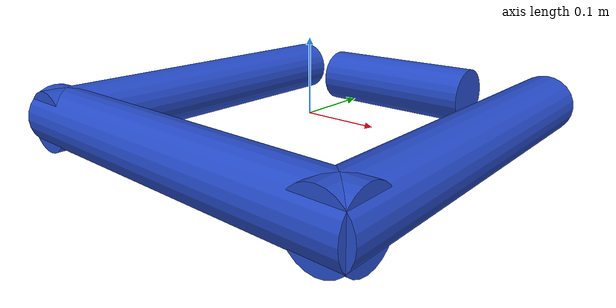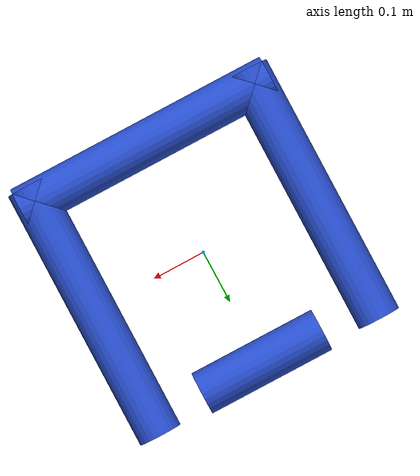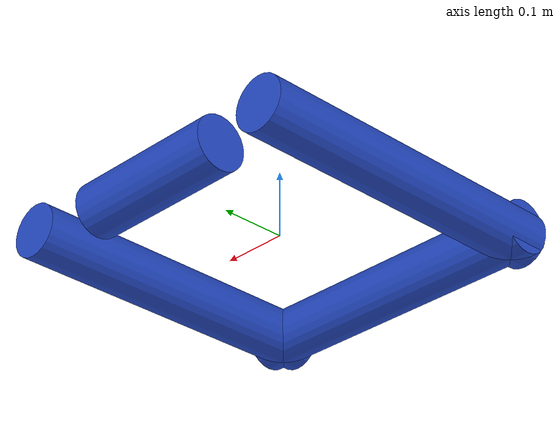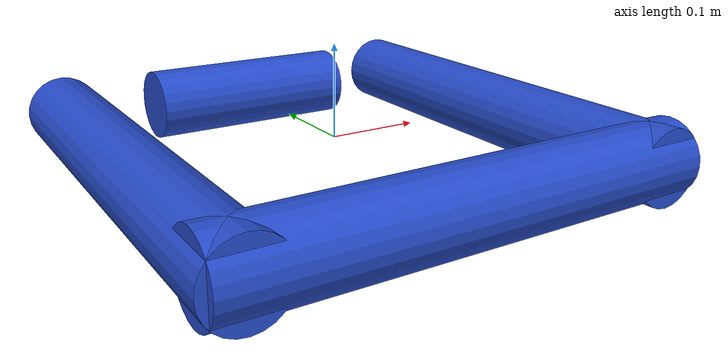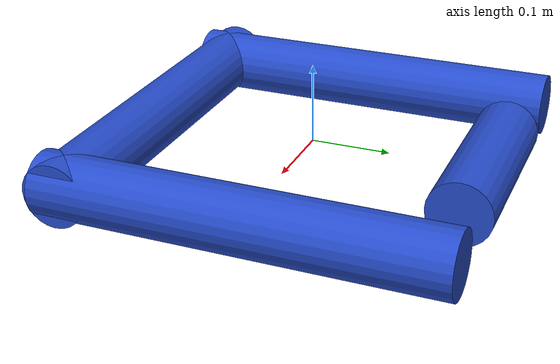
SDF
<?xml version='1.0'?>
<sdf version='1.7'>
  <model name='ring'>
    <link name='link_1'>
      <kinematic>1</kinematic>
      <inertial>
        <mass>0.00070675</mass>
        <inertia>
          <ixx>8.7e-06</ixx>
          <ixy>0</ixy>
          <ixz>0</ixz>
          <iyy>8.7e-06</iyy>
          <iyz>0</iyz>
          <izz>1.6e-07</izz>
        </inertia>
        <pose>0 0 0 0 -0 0</pose>
      </inertial>
      <pose>0 -0.22 0 0 -1.5707 0</pose>
      <visual name='visual'>
        <geometry>
          <cylinder>
            <radius>0.04</radius>
            <length>0.5</length>
          </cylinder>
        </geometry>
        <material>
          <script>
            <name>Gazebo/Blue</name>
            <uri>file://media/materials/scripts/gazebo.material</uri>
          </script>
        </material>
      </visual>
      <collision name='collision'>
        <geometry>
          <cylinder>
            <radius>0.04</radius>
            <length>0.5</length>
          </cylinder>
        </geometry>
      </collision>
    </link>

    <link name='link_1_clone'>
      <inertial>
        <mass>0.00070675</mass>
        <inertia>
          <ixx>8.7e-06</ixx>
          <ixy>0</ixy>
          <ixz>0</ixz>
          <iyy>8.7e-06</iyy>
          <iyz>0</iyz>
          <izz>1.6e-07</izz>
        </inertia>
        <pose>0 0 0 0 -0 0</pose>
      </inertial>
      <pose>-0.22 -0 0 -1.56956 -1.5707 -0.00124</pose>
      <kinematic>1</kinematic>
      <visual name='visual'>
        <pose>0 0 0 0 -0 0</pose>
        <geometry>
          <cylinder>
            <radius>0.04</radius>
            <length>0.5</length>
          </cylinder>
        </geometry>
        <material>
          <script>
            <name>Gazebo/Blue</name>
            <uri>file://media/materials/scripts/gazebo.material</uri>
          </script>
        </material>
      </visual>
      <collision name='collision'>
        <geometry>
          <cylinder>
            <radius>0.04</radius>
            <length>0.5</length>
          </cylinder>
        </geometry>
      </collision>
    </link>

    <link name='link_1_clone_0'>
      <inertial>
        <mass>0.00070675</mass>
        <inertia>
          <ixx>8.7e-06</ixx>
          <ixy>0</ixy>
          <ixz>0</ixz>
          <iyy>8.7e-06</iyy>
          <iyz>0</iyz>
          <izz>1.6e-07</izz>
        </inertia>
      </inertial>
      <pose>0.22 -0 0 1.57049 -1.5707 -0.000307</pose>
      <kinematic>1</kinematic>
      <visual name='visual'>
        <pose>0 0 0 0 -0 0</pose>
        <geometry>
          <cylinder>
            <radius>0.04</radius>
            <length>0.5</length>
          </cylinder>
        </geometry>
        <material>
          <script>
            <name>Gazebo/Blue</name>
            <uri>file://media/materials/scripts/gazebo.material</uri>
          </script>
        </material>
      </visual>
      <collision name='collision'>
        <geometry>
          <cylinder>
            <radius>0.04</radius>
            <length>0.5</length>
          </cylinder>
        </geometry>
      </collision>
    </link>

    <link name='link_1_clone_1'>
      <inertial>
        <mass>0.00037175</mass>
        <inertia>
          <ixx>1.3e-06</ixx>
          <ixy>0</ixy>
          <ixz>0</ixz>
          <iyy>1.3e-06</iyy>
          <iyz>0</iyz>
          <izz>9e-08</izz>
        </inertia>
      </inertial>
      <pose>0 0.22 0 0 -1.5707 0</pose>
      <kinematic>1</kinematic>
      <visual name='visual'>
        <pose>0 0 0 0 -0 0</pose>
        <geometry>
          <cylinder>
            <radius>0.04</radius>
            <length>0.24</length>
          </cylinder>
        </geometry>
        <material>
          <script>
            <name>Gazebo/Blue</name>
            <uri>file://media/materials/scripts/gazebo.material</uri>
          </script>
        </material>
      </visual>
      <collision name='collision'>
        <geometry>
          <cylinder>
            <radius>0.04</radius>
            <length>0.24</length>
          </cylinder>
        </geometry>
      </collision>
    </link>
  </model>
</sdf>
